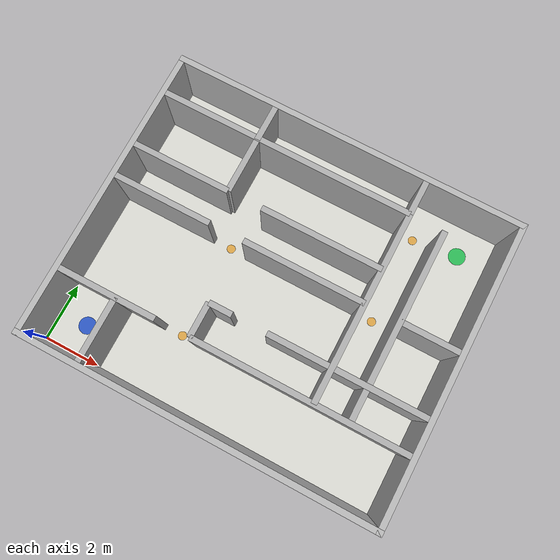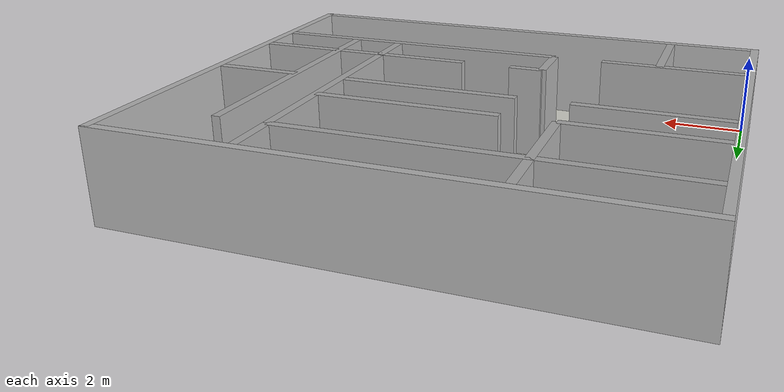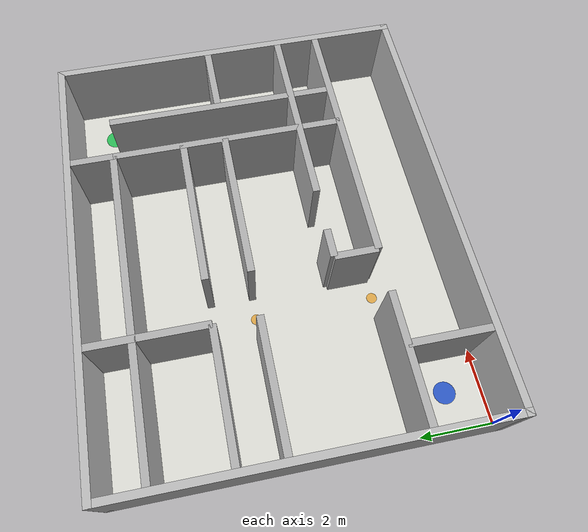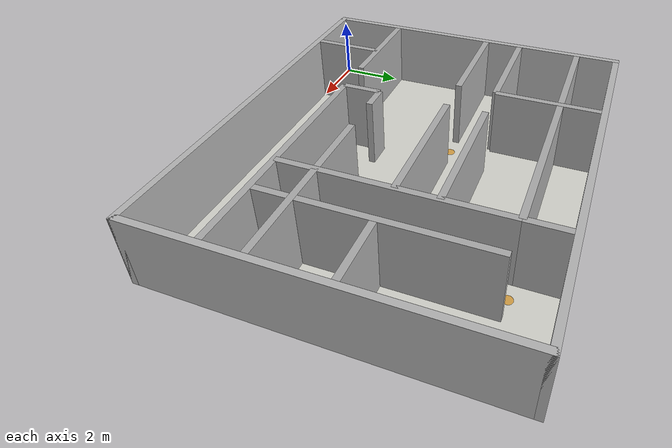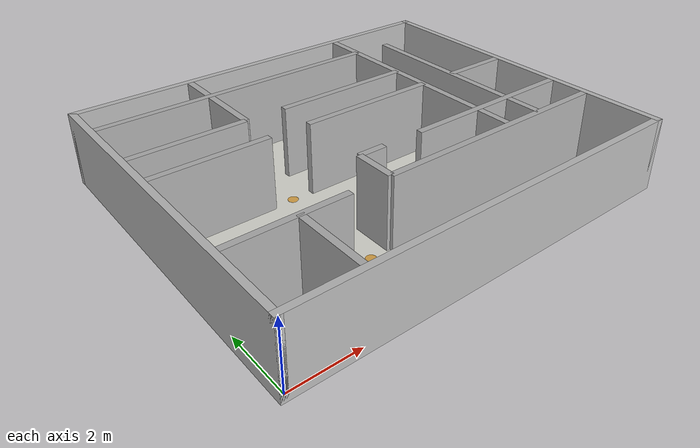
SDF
<?xml version="1.0" ?>
<sdf version="1.9">
  <world name="e6_hospital_maze">

    <!-- ── Physics ─────────────────────────────────────── -->
    <physics name="default_physics" type="ode">
      <max_step_size>0.001</max_step_size>
      <real_time_factor>1.0</real_time_factor>
      <real_time_update_rate>1000</real_time_update_rate>
      <ode>
        <solver>
          <type>quick</type>
          <iters>50</iters>
          <sor>1.3</sor>
        </solver>
        <constraints>
          <cfm>0.0</cfm>
          <erp>0.2</erp>
          <contact_max_correcting_vel>100.0</contact_max_correcting_vel>
          <contact_surface_layer>0.001</contact_surface_layer>
        </constraints>
      </ode>
    </physics>

    <!-- ── Scene / lighting ─────────────────────────────── -->
    <scene>
      <ambient>0.6 0.6 0.6 1.0</ambient>
      <background>0.7 0.7 0.7 1.0</background>
      <shadows>false</shadows>
    </scene>

    <light name="ceiling_light" type="directional">
      <cast_shadows>false</cast_shadows>
      <pose>6 5 12 0 0 0</pose>
      <diffuse>0.9 0.9 0.9 1.0</diffuse>
      <specular>0.2 0.2 0.2 1.0</specular>
      <direction>0 0 -1</direction>
    </light>

    <gravity>0 0 -9.81</gravity>
    <magnetic_field>6e-06 2.3e-05 -4.2e-05</magnetic_field>
    <atmosphere type="adiabatic"/>

    <!-- ================================================================
         FLOOR  —  12 m × 10 m, centred at (6, 5, 0)
         ================================================================ -->
    <model name="floor">
      <static>true</static>
      <pose>6 5 0 0 0 0</pose>
      <link name="floor_link">
        <collision name="col">
          <geometry><box><size>12 10 0.05</size></box></geometry>
          <surface>
            <friction><ode><mu>0.8</mu><mu2>0.8</mu2></ode></friction>
          </surface>
        </collision>
        <visual name="vis">
          <geometry><box><size>12 10 0.05</size></box></geometry>
          <material>
            <ambient>0.85 0.85 0.82 1.0</ambient>
            <diffuse>0.85 0.85 0.82 1.0</diffuse>
            <specular>0.1 0.1 0.1 1.0</specular>
          </material>
        </visual>
      </link>
    </model>

    <model name="outer_south">
      <static>true</static>
      <pose>6 -0.1 1.1 0 0 0</pose>
      <link name="link">
        <collision name="col"><geometry><box><size>12.4 0.2 2.2</size></box></geometry></collision>
        <visual name="vis">
          <geometry><box><size>12.4 0.2 2.2</size></box></geometry>
          <material><ambient>0.72 0.72 0.72 1</ambient><diffuse>0.72 0.72 0.72 1</diffuse></material>
        </visual>
      </link>
    </model>

    <model name="outer_north">
      <static>true</static>
      <pose>6 10.1 1.1 0 0 0</pose>
      <link name="link">
        <collision name="col"><geometry><box><size>12.4 0.2 2.2</size></box></geometry></collision>
        <visual name="vis">
          <geometry><box><size>12.4 0.2 2.2</size></box></geometry>
          <material><ambient>0.72 0.72 0.72 1</ambient><diffuse>0.72 0.72 0.72 1</diffuse></material>
        </visual>
      </link>
    </model>

    <model name="outer_west">
      <static>true</static>
      <pose>-0.1 5 1.1 0 0 0</pose>
      <link name="link">
        <collision name="col"><geometry><box><size>0.2 10.4 2.2</size></box></geometry></collision>
        <visual name="vis">
          <geometry><box><size>0.2 10.4 2.2</size></box></geometry>
          <material><ambient>0.72 0.72 0.72 1</ambient><diffuse>0.72 0.72 0.72 1</diffuse></material>
        </visual>
      </link>
    </model>

    <model name="outer_east">
      <static>true</static>
      <pose>12.1 5 1.1 0 0 0</pose>
      <link name="link">
        <collision name="col"><geometry><box><size>0.2 10.4 2.2</size></box></geometry></collision>
        <visual name="vis">
          <geometry><box><size>0.2 10.4 2.2</size></box></geometry>
          <material><ambient>0.72 0.72 0.72 1</ambient><diffuse>0.72 0.72 0.72 1</diffuse></material>
        </visual>
      </link>
    </model>

    <!-- Wall segment: x=4.6 → x=12.0  (east of first gap) -->
    <model name="iw_h_y22_east">
      <static>true</static>
      <!-- centre x = (4.6 + 12.0)/2 = 8.3, length = 12.0 - 4.6 = 7.4 -->
      <pose>8.3 2.2 1.1 0 0 0</pose>
      <link name="link">
        <collision name="col"><geometry><box><size>7.4 0.2 2.2</size></box></geometry></collision>
        <visual name="vis">
          <geometry><box><size>7.4 0.2 2.2</size></box></geometry>
          <material><ambient>0.68 0.68 0.68 1</ambient><diffuse>0.68 0.68 0.68 1</diffuse></material>
        </visual>
      </link>
    </model>

    <!-- Wall segment: x=0 → x=3.4  (west of first gap, blocks south-west corner) -->
    <model name="iw_h_y22_west">
      <static>true</static>
      <!-- centre x = (0 + 3.4)/2 = 1.7, length = 3.4 -->
      <pose>1.7 2.2 1.1 0 0 0</pose>
      <link name="link">
        <collision name="col"><geometry><box><size>3.4 0.2 2.2</size></box></geometry></collision>
        <visual name="vis">
          <geometry><box><size>3.4 0.2 2.2</size></box></geometry>
          <material><ambient>0.68 0.68 0.68 1</ambient><diffuse>0.68 0.68 0.68 1</diffuse></material>
        </visual>
      </link>
    </model>

    <!--
         Vertical wall at x=2.0 from y=0 to y=2.2
         (closes the western side of the entry channel, forces east travel)
    -->
    <model name="iw_v_x20_south">
      <static>true</static>
      <!-- centre y = 2.2/2 = 1.1, length y = 2.2 -->
      <pose>2.0 1.1 1.1 0 0 0</pose>
      <link name="link">
        <collision name="col"><geometry><box><size>0.2 2.2 2.2</size></box></geometry></collision>
        <visual name="vis">
          <geometry><box><size>0.2 2.2 2.2</size></box></geometry>
          <material><ambient>0.68 0.68 0.68 1</ambient><diffuse>0.68 0.68 0.68 1</diffuse></material>
        </visual>
      </link>
    </model>

    <!--
         Horizontal wall at y=5.6, from x=0 to x=12
         with gap at x=3.4–4.6 (continues north channel)
         and gap at x=8.8–10.0 (east branch continues upward)
    -->
    <!-- West segment: x=0 to x=3.4 -->
    <model name="iw_h_y56_west">
      <static>true</static>
      <pose>1.7 5.6 1.1 0 0 0</pose>
      <link name="link">
        <collision name="col"><geometry><box><size>3.4 0.2 2.2</size></box></geometry></collision>
        <visual name="vis">
          <geometry><box><size>3.4 0.2 2.2</size></box></geometry>
          <material><ambient>0.68 0.68 0.68 1</ambient><diffuse>0.68 0.68 0.68 1</diffuse></material>
        </visual>
      </link>
    </model>

    <!-- Centre segment: x=4.6 to x=8.8 -->
    <model name="iw_h_y56_centre">
      <static>true</static>
      <!-- centre x=(4.6+8.8)/2=6.7, len=8.8-4.6=4.2 -->
      <pose>6.7 5.6 1.1 0 0 0</pose>
      <link name="link">
        <collision name="col"><geometry><box><size>4.2 0.2 2.2</size></box></geometry></collision>
        <visual name="vis">
          <geometry><box><size>4.2 0.2 2.2</size></box></geometry>
          <material><ambient>0.68 0.68 0.68 1</ambient><diffuse>0.68 0.68 0.68 1</diffuse></material>
        </visual>
      </link>
    </model>

    <!-- East segment: x=10.0 to x=12.0 -->
    <model name="iw_h_y56_east">
      <static>true</static>
      <pose>11.0 5.6 1.1 0 0 0</pose>
      <link name="link">
        <collision name="col"><geometry><box><size>2.0 0.2 2.2</size></box></geometry></collision>
        <visual name="vis">
          <geometry><box><size>2.0 0.2 2.2</size></box></geometry>
          <material><ambient>0.68 0.68 0.68 1</ambient><diffuse>0.68 0.68 0.68 1</diffuse></material>
        </visual>
      </link>
    </model>

    <!--
         Dead-end spur: horizontal wall at y=3.4 from x=4.6 to x=12
         with a 1.2 m gap at x=5.4–6.6 (dead-end entrance).
         The spur goes east to x=12 wall — robot must reverse out.
    -->
    <!-- Dead-end wall west of spur gap: x=4.6 to x=5.4 -->
    <model name="iw_deadend_west">
      <static>true</static>
      <pose>5.0 3.4 1.1 0 0 0</pose>
      <link name="link">
        <collision name="col"><geometry><box><size>0.8 0.2 2.2</size></box></geometry></collision>
        <visual name="vis">
          <geometry><box><size>0.8 0.2 2.2</size></box></geometry>
          <material><ambient>0.68 0.68 0.68 1</ambient><diffuse>0.68 0.68 0.68 1</diffuse></material>
        </visual>
      </link>
    </model>

    <!-- Dead-end wall east of spur gap: x=6.6 to x=12 -->
    <model name="iw_deadend_east">
      <static>true</static>
      <!-- centre x=(6.6+12)/2=9.3, len=5.4 -->
      <pose>9.3 3.4 1.1 0 0 0</pose>
      <link name="link">
        <collision name="col"><geometry><box><size>5.4 0.2 2.2</size></box></geometry></collision>
        <visual name="vis">
          <geometry><box><size>5.4 0.2 2.2</size></box></geometry>
          <material><ambient>0.68 0.68 0.68 1</ambient><diffuse>0.68 0.68 0.68 1</diffuse></material>
        </visual>
      </link>
    </model>

    <!-- Dead-end closing wall: x=4.6 vertical from y=2.2 to y=3.4 -->
    <model name="iw_v_x46_spur_close">
      <static>true</static>
      <!-- centre y=(2.2+3.4)/2=2.8, len=1.2 -->
      <pose>4.6 2.8 1.1 0 0 0</pose>
      <link name="link">
        <collision name="col"><geometry><box><size>0.2 1.2 2.2</size></box></geometry></collision>
        <visual name="vis">
          <geometry><box><size>0.2 1.2 2.2</size></box></geometry>
          <material><ambient>0.68 0.68 0.68 1</ambient><diffuse>0.68 0.68 0.68 1</diffuse></material>
        </visual>
      </link>
    </model>

    <!--
         Horizontal wall at y=6.8 from x=0 to x=8.8
         with gap at x=3.4–4.6 (option to continue north — leads to
         a closed cell, forcing backtrack to test recovery).
    -->
    <!-- West of gap: x=0 to x=3.4 -->
    <model name="iw_h_y68_west">
      <static>true</static>
      <pose>1.7 6.8 1.1 0 0 0</pose>
      <link name="link">
        <collision name="col"><geometry><box><size>3.4 0.2 2.2</size></box></geometry></collision>
        <visual name="vis">
          <geometry><box><size>3.4 0.2 2.2</size></box></geometry>
          <material><ambient>0.68 0.68 0.68 1</ambient><diffuse>0.68 0.68 0.68 1</diffuse></material>
        </visual>
      </link>
    </model>

    <!-- East of gap: x=4.6 to x=8.8 -->
    <model name="iw_h_y68_east">
      <static>true</static>
      <!-- centre x=(4.6+8.8)/2=6.7, len=4.2 -->
      <pose>6.7 6.8 1.1 0 0 0</pose>
      <link name="link">
        <collision name="col"><geometry><box><size>4.2 0.2 2.2</size></box></geometry></collision>
        <visual name="vis">
          <geometry><box><size>4.2 0.2 2.2</size></box></geometry>
          <material><ambient>0.68 0.68 0.68 1</ambient><diffuse>0.68 0.68 0.68 1</diffuse></material>
        </visual>
      </link>
    </model>

    <!--
         Closing wall for false-north branch: vertical at x=3.4
         from y=6.8 to y=10 — makes the north-west a dead-end.
    -->
    <model name="iw_v_x34_close_nw">
      <static>true</static>
      <!-- centre y=(6.8+10)/2=8.4, len=3.2 -->
      <pose>3.4 8.4 1.1 0 0 0</pose>
      <link name="link">
        <collision name="col"><geometry><box><size>0.2 3.2 2.2</size></box></geometry></collision>
        <visual name="vis">
          <geometry><box><size>0.2 3.2 2.2</size></box></geometry>
          <material><ambient>0.68 0.68 0.68 1</ambient><diffuse>0.68 0.68 0.68 1</diffuse></material>
        </visual>
      </link>
    </model>

    <!--
         Horizontal wall at y=8.8 from x=0 to x=8.8 (top of east channel)
         and from x=10.0 to x=12.0 (closes east end above goal approach)
    -->
    <!-- West: x=0 to x=8.8 -->
    <model name="iw_h_y88_west">
      <static>true</static>
      <pose>4.4 8.8 1.1 0 0 0</pose>
      <link name="link">
        <collision name="col"><geometry><box><size>8.8 0.2 2.2</size></box></geometry></collision>
        <visual name="vis">
          <geometry><box><size>8.8 0.2 2.2</size></box></geometry>
          <material><ambient>0.68 0.68 0.68 1</ambient><diffuse>0.68 0.68 0.68 1</diffuse></material>
        </visual>
      </link>
    </model>

    <!--
         East vertical channel walls: contain x=8.8–10.0 north channel
         Left wall  at x=8.8 from y=2.2 to y=8.8
         Right wall at x=10.0 from y=2.2 to y=8.8
    -->
    <model name="iw_v_x88_east_channel">
      <static>true</static>
      <!-- centre y=(2.2+8.8)/2=5.5, len=6.6 -->
      <pose>8.8 5.5 1.1 0 0 0</pose>
      <link name="link">
        <collision name="col"><geometry><box><size>0.2 6.6 2.2</size></box></geometry></collision>
        <visual name="vis">
          <geometry><box><size>0.2 6.6 2.2</size></box></geometry>
          <material><ambient>0.68 0.68 0.68 1</ambient><diffuse>0.68 0.68 0.68 1</diffuse></material>
        </visual>
      </link>
    </model>

    <model name="iw_v_x100_east_channel">
      <static>true</static>
      <pose>10.0 5.5 1.1 0 0 0</pose>
      <link name="link">
        <collision name="col"><geometry><box><size>0.2 6.6 2.2</size></box></geometry></collision>
        <visual name="vis">
          <geometry><box><size>0.2 6.6 2.2</size></box></geometry>
          <material><ambient>0.68 0.68 0.68 1</ambient><diffuse>0.68 0.68 0.68 1</diffuse></material>
        </visual>
      </link>
    </model>

    <model name="iw_v_x88_goal_west">
      <static>true</static>
      <!-- centre y=(8.8+10)/2=9.4, len=1.2 -->
      <pose>8.8 9.4 1.1 0 0 0</pose>
      <link name="link">
        <collision name="col"><geometry><box><size>0.2 1.2 2.2</size></box></geometry></collision>
        <visual name="vis">
          <geometry><box><size>0.2 1.2 2.2</size></box></geometry>
          <material><ambient>0.68 0.68 0.68 1</ambient><diffuse>0.68 0.68 0.68 1</diffuse></material>
        </visual>
      </link>
    </model>

    <!-- ================================================================
         VISUAL MARKERS  (no collision)
         ================================================================ -->

    <!-- Start marker (blue) at (1.0, 1.0) -->
    <model name="marker_start">
      <static>true</static>
      <pose>1.0 1.0 0.026 0 0 0</pose>
      <link name="link">
        <visual name="vis">
          <geometry><cylinder><radius>0.3</radius><length>0.01</length></cylinder></geometry>
          <material>
            <ambient>0.1 0.3 0.8 0.85</ambient>
            <diffuse>0.1 0.3 0.8 0.85</diffuse>
          </material>
        </visual>
      </link>
    </model>

    <!-- Goal marker (green) at (11.0, 9.0) -->
    <model name="marker_goal">
      <static>true</static>
      <pose>11.0 9.0 0.026 0 0 0</pose>
      <link name="link">
        <visual name="vis">
          <geometry><cylinder><radius>0.3</radius><length>0.01</length></cylinder></geometry>
          <material>
            <ambient>0.1 0.75 0.3 0.85</ambient>
            <diffuse>0.1 0.75 0.3 0.85</diffuse>
          </material>
        </visual>
      </link>
    </model>

    <!-- CP1: first turn (x=4.0, y=2.2) -->
    <model name="marker_cp1">
      <static>true</static>
      <pose>4.0 2.2 0.026 0 0 0</pose>
      <link name="link">
        <visual name="vis">
          <geometry><cylinder><radius>0.15</radius><length>0.01</length></cylinder></geometry>
          <material><ambient>0.9 0.6 0.1 0.7</ambient><diffuse>0.9 0.6 0.1 0.7</diffuse></material>
        </visual>
      </link>
    </model>

    <!-- CP2: T-junction (x=4.0, y=5.6) -->
    <model name="marker_cp2">
      <static>true</static>
      <pose>4.0 5.6 0.026 0 0 0</pose>
      <link name="link">
        <visual name="vis">
          <geometry><cylinder><radius>0.15</radius><length>0.01</length></cylinder></geometry>
          <material><ambient>0.9 0.6 0.1 0.7</ambient><diffuse>0.9 0.6 0.1 0.7</diffuse></material>
        </visual>
      </link>
    </model>

    <!-- CP3: east channel entry (x=9.4, y=5.6) -->
    <model name="marker_cp3">
      <static>true</static>
      <pose>9.4 5.6 0.026 0 0 0</pose>
      <link name="link">
        <visual name="vis">
          <geometry><cylinder><radius>0.15</radius><length>0.01</length></cylinder></geometry>
          <material><ambient>0.9 0.6 0.1 0.7</ambient><diffuse>0.9 0.6 0.1 0.7</diffuse></material>
        </visual>
      </link>
    </model>

    <!-- CP4: turn into goal approach (x=9.4, y=8.8) -->
    <model name="marker_cp4">
      <static>true</static>
      <pose>9.4 8.8 0.026 0 0 0</pose>
      <link name="link">
        <visual name="vis">
          <geometry><cylinder><radius>0.15</radius><length>0.01</length></cylinder></geometry>
          <material><ambient>0.9 0.6 0.1 0.7</ambient><diffuse>0.9 0.6 0.1 0.7</diffuse></material>
        </visual>
      </link>
    </model>

    <!-- ================================================================
         GAZEBO GUI CAMERA — overhead view of full maze
         ================================================================ -->
    <gui fullscreen="0">
      <camera name="user_camera">
        <pose>6 5 28 0 1.5707 0</pose>
        <view_controller>orbit</view_controller>
      </camera>
    </gui>

  </world>
</sdf>
